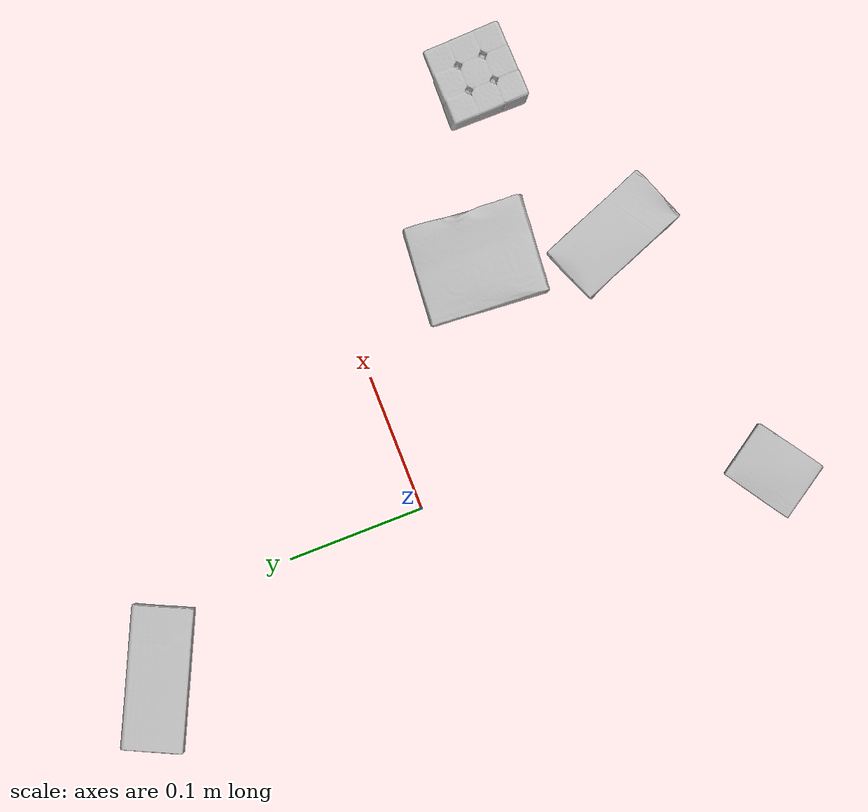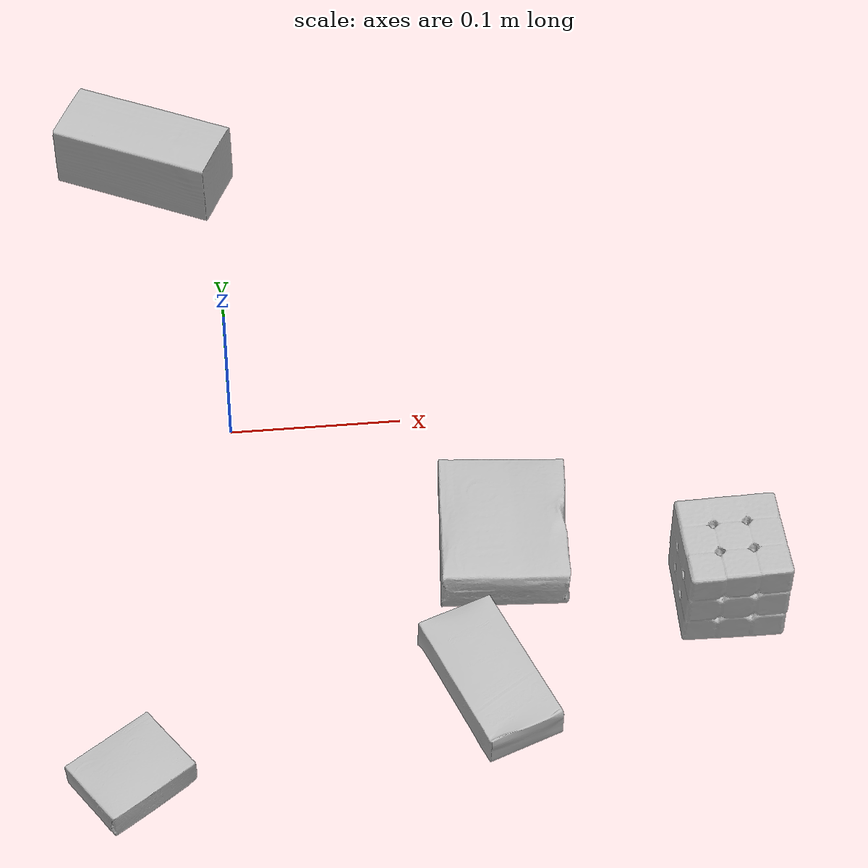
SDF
<sdf version="1.4">
  <world name="default">
    <light name="light1" type="point">
      <pose>0 0 1 0 0 0</pose>
      <diffuse>3 3 3 1</diffuse>
      <specular>3 3 3 1</specular>
    </light>
    <light name="light2" type="point">
      <pose>0 0.5 2 0 0 0</pose>
      <diffuse>1 1 1 1</diffuse>
      <specular>1 1 1 1</specular>
    </light>
    <light name="light3" type="point">
      <pose>0 0.5 2 0 0 0</pose>
      <diffuse>3 3 3 1</diffuse>
      <specular>3 3 3 1</specular>
    </light>
    <scene>
      <ambient>0.7 0.7 0.7</ambient>
    </scene>
    <model name="box1">
      <link name="link_box1">
        <collision name="default">
          <geometry>
            <mesh>
              <uri>model://gelatin_box/collision_meshes/collision.obj</uri>
              <scale>1.0 1.0 1.0</scale>
            </mesh>
          </geometry>
          <surface>
            <friction>
              <ode>
                <mu>0.5</mu>
                <mu2>0.5</mu2>
              </ode>
            </friction>
          <contact>
        <ode>
            <max_vel>0</max_vel>
            <min_depth>0.0001</min_depth>
            <kp>1e8</kp>
        </ode>
    </contact></surface>
        </collision>
        <visual name="default">
          <geometry>
            <mesh>
              <uri>model://gelatin_box/visual_meshes/visual.dae</uri>
              <scale>1.0 1.0 1.0</scale>
            </mesh>
          </geometry>
        </visual>
        <inertial>
          <mass>0.15228882431983948</mass>
          <pose>0.0004319618456065655 0.00011156871914863586 -0.0003640321083366871 -0.00105037218966889 -0.004755816826754503 0.0164405576082189</pose>
          <inertia>
            <ixx>0.00010750349</ixx>
            <iyy>7.678918e-05</iyy>
            <izz>0.00016364428</izz>
            <ixy>0</ixy>
            <ixz>0</ixz>
            <iyz>0</iyz>
          </inertia>
        </inertial>
      </link>
      <pose>0.14962321519851685 -0.099889375269413 0.015168311074376106 0.005596365620797181 -0.007303365266971532 -0.08525695969624031</pose>
    </model>
    <model name="box2">
      <link name="link_box2">
        <collision name="default">
          <geometry>
            <mesh>
              <uri>model://rubiks_cube/collision_meshes/collision.obj</uri>
              <scale>1.0 1.0 1.0</scale>
            </mesh>
          </geometry>
          <surface>
            <friction>
              <ode>
                <mu>0.5</mu>
                <mu2>0.5</mu2>
              </ode>
            </friction>
          <contact>
        <ode>
            <max_vel>0</max_vel>
            <min_depth>0.0001</min_depth>
            <kp>1e8</kp>
        </ode>
    </contact></surface>
        </collision>
        <visual name="default">
          <geometry>
            <mesh>
              <uri>model://rubiks_cube/visual_meshes/visual.dae</uri>
              <scale>1.0 1.0 1.0</scale>
            </mesh>
          </geometry>
        </visual>
        <inertial>
          <mass>0.18699690699577332</mass>
          <pose>2.6721041649580002e-05 5.2569666877388954e-05 -7.264316082000732e-06 -0.054672785544912415 -0.09814058570479768 -0.03445363054661819</pose>
          <inertia>
            <ixx>0.00010332834</ixx>
            <iyy>0.00010284647</iyy>
            <izz>0.000104184575</izz>
            <ixy>0</ixy>
            <ixz>0</ixz>
            <iyz>0</iyz>
          </inertia>
        </inertial>
      </link>
      <pose>0.2706678807735443 -0.1466672569513321 0.028678981587290764 -2.617658966655487e-06 -8.25600182407052e-07 0.02353909704327531</pose>
    </model>
    <model name="box3">
      <link name="link_box3">
        <collision name="default">
          <geometry>
            <mesh>
              <uri>model://pudding_box/collision_meshes/collision.obj</uri>
              <scale>0.5 0.5 0.5</scale>
            </mesh>
          </geometry>
          <surface>
            <friction>
              <ode>
                <mu>0.5</mu>
                <mu2>0.5</mu2>
              </ode>
            </friction>
          <contact>
        <ode>
            <max_vel>0</max_vel>
            <min_depth>0.0001</min_depth>
            <kp>1e8</kp>
        </ode>
    </contact></surface>
        </collision>
        <visual name="default">
          <geometry>
            <mesh>
              <uri>model://pudding_box/visual_meshes/visual.dae</uri>
              <scale>0.5 0.5 0.5</scale>
            </mesh>
          </geometry>
        </visual>
        <inertial>
          <mass>0.04129739850759506</mass>
          <pose>0.00024474109522998333 0.00040339428232982755 -0.0002594413817860186 0.005213100432551209 -0.006603796827212886 0.020079819580048088</pose>
          <inertia>
            <ixx>1.1671145e-05</ixx>
            <iyy>7.852431e-06</iyy>
            <izz>1.7235501e-05</izz>
            <ixy>0</ixy>
            <ixz>0</ixz>
            <iyz>0</iyz>
          </inertia>
        </inertial>
      </link>
      <pose>-0.06516369432210922 -0.24208146333694458 0.00986290443688631 0.022349823603658486 -0.011390887407416627 -0.9754831213326567</pose>
    </model>
    <model name="box4">
      <link name="link_box4">
        <collision name="default">
          <geometry>
            <mesh>
              <uri>model://sugar_box/collision_meshes/collision.obj</uri>
              <scale>0.5 0.5 0.5</scale>
            </mesh>
          </geometry>
          <surface>
            <friction>
              <ode>
                <mu>0.5</mu>
                <mu2>0.5</mu2>
              </ode>
            </friction>
          <contact>
        <ode>
            <max_vel>0</max_vel>
            <min_depth>0.0001</min_depth>
            <kp>1e8</kp>
        </ode>
    </contact></surface>
        </collision>
        <visual name="default">
          <geometry>
            <mesh>
              <uri>model://sugar_box/visual_meshes/visual.dae</uri>
              <scale>0.5 0.5 0.5</scale>
            </mesh>
          </geometry>
        </visual>
        <inertial>
          <mass>0.09136254340410233</mass>
          <pose>0.0005171863595023751 1.924554817378521e-05 -0.00018182402709499002 -0.00040462606744182556 0.0010506635219056535 0.0026153790218759383</pose>
          <inertia>
            <ixx>1.9030753e-05</ixx>
            <iyy>6.15113e-05</iyy>
            <izz>7.363638e-05</izz>
            <ixy>0</ixy>
            <ixz>0</ixz>
            <iyz>0</iyz>
          </inertia>
        </inertial>
      </link>
      <pose>0.1318376213312149 -0.19734656810760498 0.011399302631616592 0.0007754519305212375 -0.023432542713503354 1.9418403395894435</pose>
    </model>
    <model name="box5">
      <link name="link_box5">
        <collision name="default">
          <geometry>
            <mesh>
              <uri>model://wood_block/collision_meshes/collision.obj</uri>
              <scale>0.5 0.5 0.5</scale>
            </mesh>
          </geometry>
          <surface>
            <friction>
              <ode>
                <mu>0.5</mu>
                <mu2>0.5</mu2>
              </ode>
            </friction>
          <contact>
        <ode>
            <max_vel>0</max_vel>
            <min_depth>0.0001</min_depth>
            <kp>1e8</kp>
        </ode>
    </contact></surface>
        </collision>
        <visual name="default">
          <geometry>
            <mesh>
              <uri>model://wood_block/visual_meshes/visual.dae</uri>
              <scale>0.5 0.5 0.5</scale>
            </mesh>
          </geometry>
        </visual>
        <inertial>
          <mass>0.2591090798377991</mass>
          <pose>-2.9066577553749084e-06 -0.00028540470520965755 0.00013204290007706732 -0.05220937491622274 -0.005192696068464721 -0.006861378365732138</pose>
          <inertia>
            <ixx>8.6681786e-05</ixx>
            <iyy>0.00027382775</iyy>
            <izz>0.0002728035</izz>
            <ixy>0</ixy>
            <ixz>0</ixz>
            <iyz>0</iyz>
          </inertia>
        </inertial>
      </link>
      <pose>-0.044301729649305344 0.21606621146202087 0.022629262879490852 -0.00520848666363804 0.005718705085365575 2.698076801872288</pose>
    </model>
  <physics type="ode">
      <max_contacts>50</max_contacts>
      <ode>
        <solver>
          <type>quick</type>
          <iters>75</iters>
        </solver>
        <constraints>
          <contact_max_correcting_vel>0</contact_max_correcting_vel>
          <contact_surface_layer>0</contact_surface_layer>
        </constraints>
      </ode>
    </physics></world>
</sdf>
